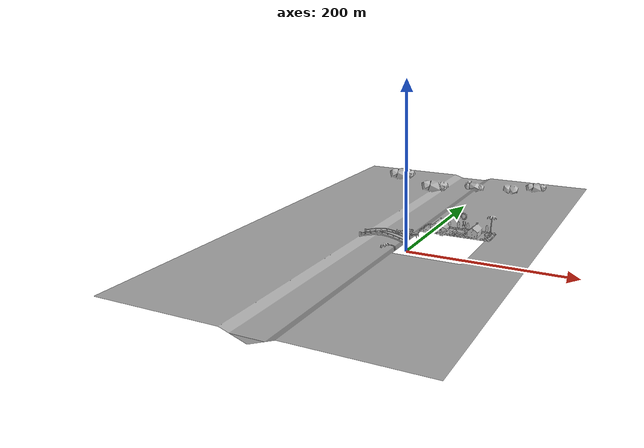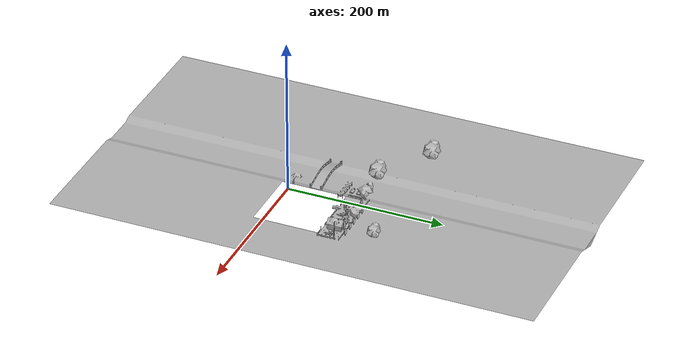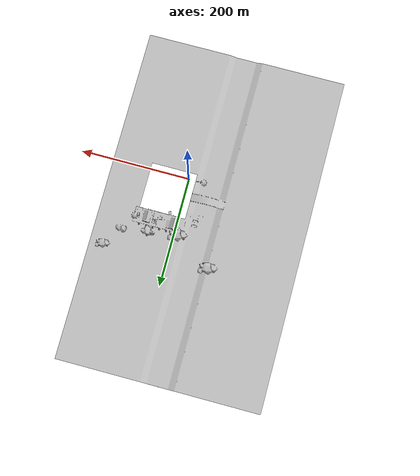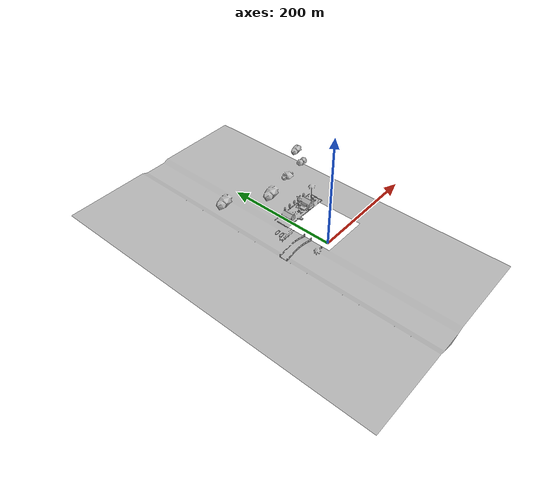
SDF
<?xml version="1.0"?>
<sdf version="1.6">
    <model name="scenery">
      <static>true</static>
      <link name="scenery">
        <visual name="visual">
          <geometry>
            <mesh><uri>model://scenery/meshes/scenery.obj</uri></mesh>
          </geometry>
        </visual>
        <collision name="collision">
          <geometry>
            <mesh><uri>model://scenery/meshes/scenery.obj</uri></mesh>
          </geometry>
        </collision>
      </link>
    </model>
</sdf>
